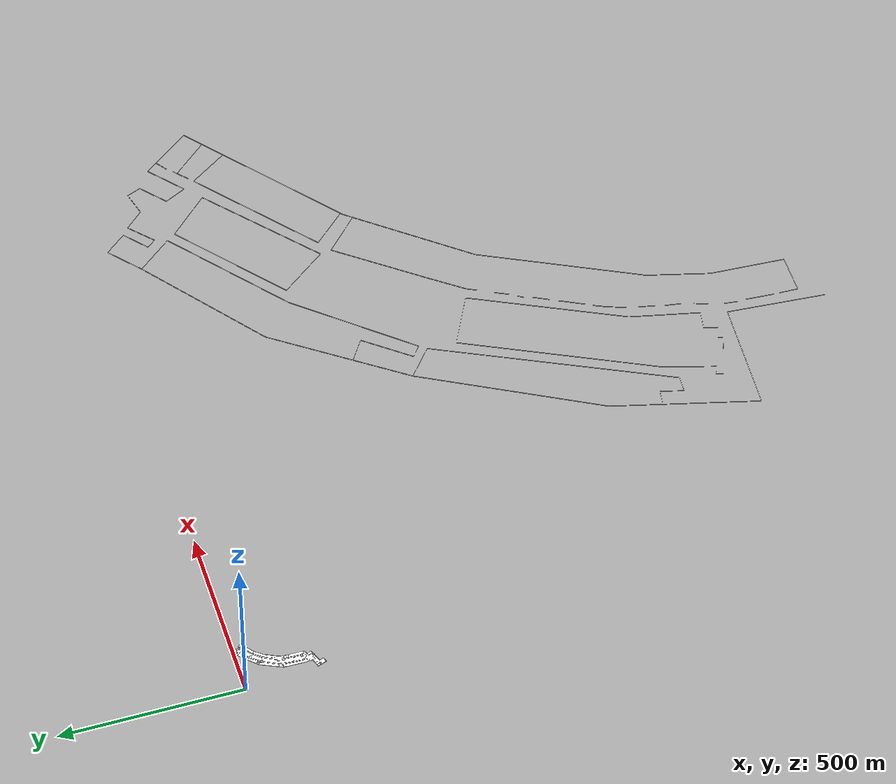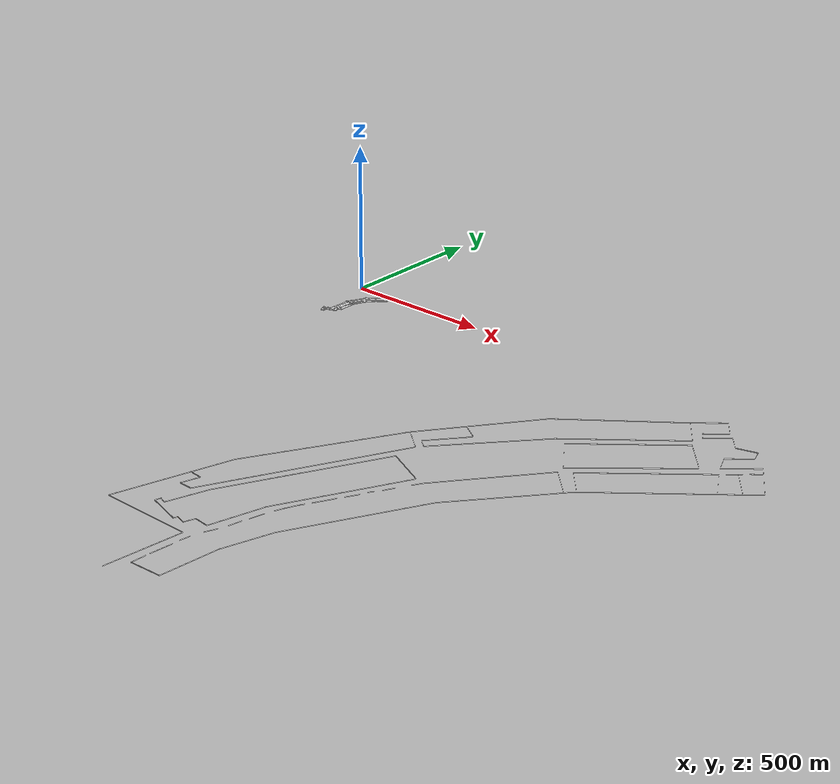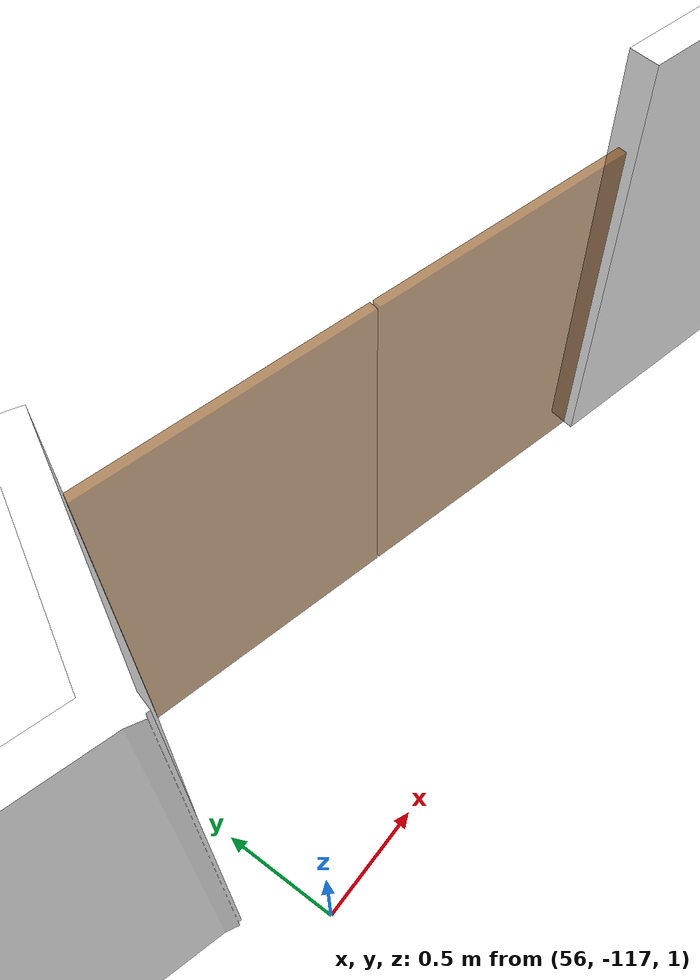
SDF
<sdf version="1.7">
 <world name="sim_world">
  <physics name="10ms" type="ode">
   <max_step_size>0.01</max_step_size>
   <real_time_factor>1.0</real_time_factor>
  </physics>
  <plugin filename="libignition-gazebo-physics-system.so" name="ignition::gazebo::systems::Physics"/>
  <plugin filename="libignition-gazebo-user-commands-system.so" name="ignition::gazebo::systems::UserCommands"/>
  <plugin filename="libignition-gazebo-scene-broadcaster-system.so" name="ignition::gazebo::systems::SceneBroadcaster"/>
  <scene><ambient>1 1 1</ambient><background>0.8 0.8 0.8</background><grid>false</grid></scene>
  <light type="directional" name="sun">
   <pose>0 0 10 0 0 0</pose>
   <diffuse>1 1 1 1</diffuse>
   <specular>0.2 0.2 0.2 1</specular>
   <attenuation>
    <range>1000</range>
    <constant>0.09</constant>
    <linear>0.001</linear>
    <quadratic>0.001</quadratic>
   </attenuation>
   <direction>-0.5 0.1 -0.9</direction>
  </light>
  <model name="LIFT1_1_door">
   <pose>56.89277169678835 -116.53908602267393 1.0 0 0 2.9216930009316164</pose>
   <link name="right">
    <pose>0.48630591218750446 0 1.11 0 0 0</pose>
    <visual name="right_visual">
     <geometry><box><size>0.9626118243750089 0.03 2.2</size></box></geometry>
     <material>
      <ambient>0.5 0.25 0 0.6</ambient>
      <diffuse>0.5 0.25 0 0.6</diffuse>
      <pbr><metal><metalness>0.0</metalness></metal></pbr>
     </material>
    </visual>
    <collision name="right_collision">
     <geometry><box><size>0.9626118243750089 0.03 2.2</size></box></geometry>
     <surface><contact><collide_bitmask>0x02</collide_bitmask></contact></surface>
    </collision>
    <inertial>
     <mass>50.0</mass>
     <inertia><ixx>20.17041666666667</ixx><iyy>24.02758968511077</iyy><izz>3.864673018444096</izz></inertia>
    </inertial>
   </link>
   <joint name="right_joint" type="prismatic">
    <parent>world</parent>
    <child>right</child>
    <axis>
     <xyz>1 0 0</xyz>
     <limit><lower>0.0</lower><upper>0.9726118243750089</upper><effort>500.0</effort></limit>
    </axis>
   </joint>
   <link name="left">
    <pose>-0.48630591218750446 0 1.11 0 0 0</pose>
    <visual name="left_visual">
     <geometry><box><size>0.9626118243750089 0.03 2.2</size></box></geometry>
     <material>
      <ambient>0.5 0.25 0 0.6</ambient>
      <diffuse>0.5 0.25 0 0.6</diffuse>
      <pbr><metal><metalness>0.0</metalness></metal></pbr>
     </material>
    </visual>
    <collision name="left_collision">
     <geometry><box><size>0.9626118243750089 0.03 2.2</size></box></geometry>
     <surface><contact><collide_bitmask>0x02</collide_bitmask></contact></surface>
    </collision>
    <inertial>
     <mass>50.0</mass>
     <inertia><ixx>20.17041666666667</ixx><iyy>24.02758968511077</iyy><izz>3.864673018444096</izz></inertia>
    </inertial>
   </link>
   <joint name="left_joint" type="prismatic">
    <parent>world</parent>
    <child>left</child>
    <axis>
     <xyz>1 0 0</xyz>
     <limit><lower>-0.9726118243750089</lower><upper>0.0</upper><effort>500.0</effort></limit>
    </axis>
   </joint>
   <plugin name="door" filename="libdoor.so">
    <v_max_door>0.2</v_max_door>
    <a_max_door>0.2</a_max_door>
    <a_nom_door>0.08</a_nom_door>
    <dx_min_door>0.001</dx_min_door>
    <f_max_door>100.0</f_max_door>
    <door name="LIFT1_1_door" type="DoubleSlidingDoor" left_joint_name="left_joint" right_joint_name="right_joint"/>
   </plugin>
  </model>
  <include>
   <name>map_elettra_floor1</name>
   <uri>model://map_elettra_floor1</uri>
   <pose>0 0 1.0 0 0 0</pose>
  </include>
  <model name="LIFT1_2_door">
   <pose>757.806 -1550.4175 2.0 0 0 2.8198548913336587</pose>
   <link name="right">
    <pose>6.180118288714222 0 1.11 0 0 0</pose>
    <visual name="right_visual">
     <geometry><box><size>12.350236577428443 0.03 2.2</size></box></geometry>
     <material>
      <ambient>0.5 0.25 0 0.6</ambient>
      <diffuse>0.5 0.25 0 0.6</diffuse>
      <pbr><metal><metalness>0.0</metalness></metal></pbr>
     </material>
    </visual>
    <collision name="right_collision">
     <geometry><box><size>12.350236577428443 0.03 2.2</size></box></geometry>
     <surface><contact><collide_bitmask>0x02</collide_bitmask></contact></surface>
    </collision>
    <inertial>
     <mass>50.0</mass>
     <inertia><ixx>20.17041666666667</ixx><iyy>655.701431326881</iyy><izz>635.5385146602143</izz></inertia>
    </inertial>
   </link>
   <joint name="right_joint" type="prismatic">
    <parent>world</parent>
    <child>right</child>
    <axis>
     <xyz>1 0 0</xyz>
     <limit><lower>0.0</lower><upper>12.360236577428443</upper><effort>500.0</effort></limit>
    </axis>
   </joint>
   <link name="left">
    <pose>-6.180118288714222 0 1.11 0 0 0</pose>
    <visual name="left_visual">
     <geometry><box><size>12.350236577428443 0.03 2.2</size></box></geometry>
     <material>
      <ambient>0.5 0.25 0 0.6</ambient>
      <diffuse>0.5 0.25 0 0.6</diffuse>
      <pbr><metal><metalness>0.0</metalness></metal></pbr>
     </material>
    </visual>
    <collision name="left_collision">
     <geometry><box><size>12.350236577428443 0.03 2.2</size></box></geometry>
     <surface><contact><collide_bitmask>0x02</collide_bitmask></contact></surface>
    </collision>
    <inertial>
     <mass>50.0</mass>
     <inertia><ixx>20.17041666666667</ixx><iyy>655.701431326881</iyy><izz>635.5385146602143</izz></inertia>
    </inertial>
   </link>
   <joint name="left_joint" type="prismatic">
    <parent>world</parent>
    <child>left</child>
    <axis>
     <xyz>1 0 0</xyz>
     <limit><lower>-12.360236577428443</lower><upper>0.0</upper><effort>500.0</effort></limit>
    </axis>
   </joint>
   <plugin name="door" filename="libdoor.so">
    <v_max_door>0.2</v_max_door>
    <a_max_door>0.2</a_max_door>
    <a_nom_door>0.08</a_nom_door>
    <dx_min_door>0.001</dx_min_door>
    <f_max_door>100.0</f_max_door>
    <door name="LIFT1_2_door" type="DoubleSlidingDoor" left_joint_name="left_joint" right_joint_name="right_joint"/>
   </plugin>
  </model>
  <include>
   <name>map_elettra_floor2</name>
   <uri>model://map_elettra_floor2</uri>
   <pose>0 0 2.0 0 0 0</pose>
  </include>
  <rmf_charger_waypoints name="charger_waypoints"/>
 </world>
</sdf>

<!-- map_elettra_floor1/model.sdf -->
<sdf version="1.7">
  <model name="map_elettra_floor1">
    <static>true</static>
    <link name="floor_1">
      <visual name="visual">
        <geometry>
          <mesh>
            <uri>model://map_elettra_floor1/meshes/floor_1.obj</uri>
          </mesh>
        </geometry>
        <material>
          <diffuse>1.0 1.0 1.0</diffuse>
          <specular>0.1 0.1 0.1</specular>
          <pbr>
            <metal>
              <metalness>0.0</metalness>
              <albedo_map>model://map_elettra_floor1/meshes/blue_linoleum.png</albedo_map>
            </metal>
          </pbr>
          <script>
            <uri>model://map_elettra_floor1/meshes/</uri>
            <name>floor_1_Diffuse</name>
          </script>
        </material>
      </visual>
      <collision name="collision">
        <geometry>
          <mesh>
            <uri>model://map_elettra_floor1/meshes/floor_1.obj</uri>
          </mesh>
        </geometry>
        <surface>
          <contact>
            <collide_bitmask>0x01</collide_bitmask>
          </contact>
        </surface>
      </collision>
    </link>
    <link name="wall_1">
      <visual name="wall_1">
        <geometry>
          <mesh>
            <uri>model://map_elettra_floor1/meshes/wall_1.obj</uri>
          </mesh>
        </geometry>
        <transparency>0.0</transparency>
        <material>
          <diffuse>1.0 1.0 1.0</diffuse>
          <specular>0.1 0.1 0.1</specular>
          <pbr>
            <metal>
              <metalness>0.0</metalness>
              <albedo_map>model://map_elettra_floor1/meshes/default.png</albedo_map>
            </metal>
          </pbr>
          <script>
            <uri>model://map_elettra_floor1/meshes/</uri>
            <name>wall_1_Diffuse</name>
          </script>
        </material>
      </visual>
      <collision name="collision">
        <geometry>
          <mesh>
            <uri>model://map_elettra_floor1/meshes/wall_1.obj</uri>
          </mesh>
        </geometry>
        <surface>
          <contact>
            <collide_bitmask>0x01</collide_bitmask>
          </contact>
        </surface>
      </collision>
      <pose>13.743847063020425 -223.20713808548246 0 0 0 0</pose>
    </link>
  </model>
</sdf>

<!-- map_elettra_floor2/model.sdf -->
<sdf version="1.7">
  <model name="map_elettra_floor2">
    <static>true</static>
    <link name="floor_1">
      <visual name="visual">
        <geometry>
          <mesh>
            <uri>model://map_elettra_floor2/meshes/floor_1.obj</uri>
          </mesh>
        </geometry>
        <material>
          <diffuse>1.0 1.0 1.0</diffuse>
          <specular>0.1 0.1 0.1</specular>
          <pbr>
            <metal>
              <metalness>0.0</metalness>
              <albedo_map>model://map_elettra_floor2/meshes/blue_linoleum.png</albedo_map>
            </metal>
          </pbr>
          <script>
            <uri>model://map_elettra_floor2/meshes/</uri>
            <name>floor_1_Diffuse</name>
          </script>
        </material>
      </visual>
      <collision name="collision">
        <geometry>
          <mesh>
            <uri>model://map_elettra_floor2/meshes/floor_1.obj</uri>
          </mesh>
        </geometry>
        <surface>
          <contact>
            <collide_bitmask>0x01</collide_bitmask>
          </contact>
        </surface>
      </collision>
    </link>
    <link name="wall_1">
      <visual name="wall_1">
        <geometry>
          <mesh>
            <uri>model://map_elettra_floor2/meshes/wall_1.obj</uri>
          </mesh>
        </geometry>
        <transparency>0.0</transparency>
        <material>
          <diffuse>1.0 1.0 1.0</diffuse>
          <specular>0.1 0.1 0.1</specular>
          <pbr>
            <metal>
              <metalness>0.0</metalness>
              <albedo_map>model://map_elettra_floor2/meshes/default.png</albedo_map>
            </metal>
          </pbr>
          <script>
            <uri>model://map_elettra_floor2/meshes/</uri>
            <name>wall_1_Diffuse</name>
          </script>
        </material>
      </visual>
      <collision name="collision">
        <geometry>
          <mesh>
            <uri>model://map_elettra_floor2/meshes/wall_1.obj</uri>
          </mesh>
        </geometry>
        <surface>
          <contact>
            <collide_bitmask>0x01</collide_bitmask>
          </contact>
        </surface>
      </collision>
      <pose>502.15491777676704 -1877.2936726031658 0 0 0 0</pose>
    </link>
  </model>
</sdf>
